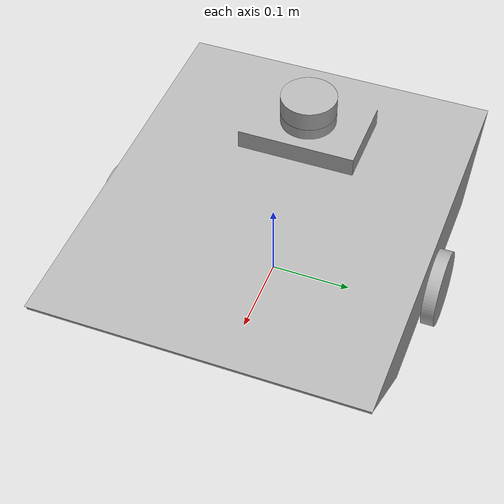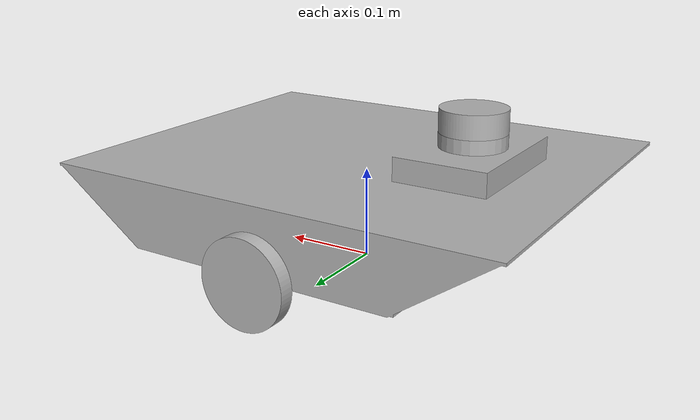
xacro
<?xml version="1.0" ?>
<robot name="urdf-model" xmlns:xacro="http://www.ros.org/wiki/xacro">

<xacro:include filename="$(find urdf-model_description)/urdf/materials.xacro" />
<xacro:include filename="$(find urdf-model_description)/urdf/urdf-model.trans" />
<xacro:include filename="$(find urdf-model_description)/urdf/urdf-model.gazebo" />
<link name="base_link">
  <inertial>
    <origin rpy="0 0 0" xyz="-0.0275061013551108 -0.004341483810504465 0.09680298938914361"/>
    <mass value="2.1080129630892235"/>
    <inertia ixx="0.031032" ixy="-0.000398" ixz="0.002171" iyy="0.040587" iyz="0.000128" izz="0.066435"/>
  </inertial>
  <visual>
    <origin rpy="0 0 0" xyz="0 0 0"/>
    <geometry>
      <mesh filename="package://urdf-model_description/meshes/base_link.stl" scale="0.001 0.001 0.001"/>
    </geometry>
    <material name="silver"/>
  </visual>
  <collision>
    <origin rpy="0 0 0" xyz="0 0 0"/>
    <geometry>
      <mesh filename="package://urdf-model_description/meshes/base_link.stl" scale="0.001 0.001 0.001"/>
    </geometry>
  </collision>
</link>

<link name="left_wheel_1">
  <inertial>
    <origin rpy="0 0 0" xyz="1.004166337169966e-15 -0.007999999999999813 3.2612801348363973e-16"/>
    <mass value="0.10107848168254108"/>
    <inertia ixx="5.7e-05" ixy="0.0" ixz="0.0" iyy="0.000109" iyz="0.0" izz="5.7e-05"/>
  </inertial>
  <visual>
    <origin rpy="0 0 0" xyz="-0.0 0.2115 -0.0465"/>
    <geometry>
      <mesh filename="package://urdf-model_description/meshes/left_wheel_1.stl" scale="0.001 0.001 0.001"/>
    </geometry>
    <material name="silver"/>
  </visual>
  <collision>
    <origin rpy="0 0 0" xyz="-0.0 0.2115 -0.0465"/>
    <geometry>
      <mesh filename="package://urdf-model_description/meshes/left_wheel_1.stl" scale="0.001 0.001 0.001"/>
    </geometry>
  </collision>
</link>

<link name="right_wheel_1">
  <inertial>
    <origin rpy="0 0 0" xyz="-2.1077518583023611e-07 0.00800000000000023 2.983724378680108e-16"/>
    <mass value="0.10107848168254113"/>
    <inertia ixx="5.7e-05" ixy="0.0" ixz="0.0" iyy="0.000109" iyz="0.0" izz="5.7e-05"/>
  </inertial>
  <visual>
    <origin rpy="0 0 0" xyz="3e-05 -0.1925 -0.0465"/>
    <geometry>
      <mesh filename="package://urdf-model_description/meshes/right_wheel_1.stl" scale="0.001 0.001 0.001"/>
    </geometry>
    <material name="silver"/>
  </visual>
  <collision>
    <origin rpy="0 0 0" xyz="3e-05 -0.1925 -0.0465"/>
    <geometry>
      <mesh filename="package://urdf-model_description/meshes/right_wheel_1.stl" scale="0.001 0.001 0.001"/>
    </geometry>
  </collision>
</link>

<link name="lidar_1">
  <inertial>
    <origin rpy="0 0 0" xyz="4.9028732576617e-07 6.591949208711867e-17 0.012500000000000039"/>
    <mass value="0.10406525665016184"/>
    <inertia ixx="3.8e-05" ixy="-0.0" ixz="-0.0" iyy="3.8e-05" iyz="0.0" izz="6.5e-05"/>
  </inertial>
  <visual>
    <origin rpy="0 0 0" xyz="0.125032 0.01 -0.1595"/>
    <geometry>
      <mesh filename="package://urdf-model_description/meshes/lidar_1.stl" scale="0.001 0.001 0.001"/>
    </geometry>
    <material name="silver"/>
  </visual>
  <collision>
    <origin rpy="0 0 0" xyz="0.125032 0.01 -0.1595"/>
    <geometry>
      <mesh filename="package://urdf-model_description/meshes/lidar_1.stl" scale="0.001 0.001 0.001"/>
    </geometry>
  </collision>
</link>

<joint name="Rev7" type="continuous">
  <origin rpy="0 0 0" xyz="0.0 -0.2115 0.0465"/>
  <parent link="base_link"/>
  <child link="left_wheel_1"/>
  <axis xyz="0.0 1.0 0.0"/>
</joint>

<joint name="Rev8" type="continuous">
  <origin rpy="0 0 0" xyz="-3e-05 0.1925 0.0465"/>
  <parent link="base_link"/>
  <child link="right_wheel_1"/>
  <axis xyz="-0.0 1.0 -0.0"/>
</joint>

<joint name="Rigid9" type="fixed">
  <origin rpy="0 0 0" xyz="-0.125032 -0.01 0.1595"/>
  <parent link="base_link"/>
  <child link="lidar_1"/>
</joint>

</robot>

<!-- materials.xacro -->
<robot name="urdf-model" xmlns:xacro="http://www.ros.org/wiki/xacro" >

<material name="silver">
  <color rgba="0.700 0.700 0.700 1.000"/>
</material>

</robot>

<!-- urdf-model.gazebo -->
<robot name="urdf-model" xmlns:xacro="http://www.ros.org/wiki/xacro" >

<xacro:property name="body_color" value="Gazebo/Silver" />

<gazebo>
  <plugin filename="libgazebo_ros_control.so" name="control"/>
</gazebo>
<gazebo reference="base_link">
  <material>${body_color}</material>
  <mu1>0.1</mu1>
  <mu2>0.1</mu2>
  <selfCollide>true</selfCollide>
  <gravity>true</gravity>
</gazebo>

<gazebo reference="left_wheel_1">
  <material>${body_color}</material>
  <mu1>1500</mu1>
  <mu2>1500</mu2>
  <selfCollide>true</selfCollide>
</gazebo>

<gazebo reference="right_wheel_1">
  <material>${body_color}</material>
  <mu1>1500</mu1>
  <mu2>1500</mu2>
  <selfCollide>true</selfCollide>
</gazebo>

<gazebo reference="lidar_1">
  <material>${body_color}</material>
  <mu1>0.2</mu1>
  <mu2>0.2</mu2>
  <selfCollide>true</selfCollide>
</gazebo>

<gazebo>
  <plugin name="differential_drive_controller" filename="libgazebo_ros_diff_drive.so">

    <!-- Plugin update rate in Hz -->
    <updateRate>$100</updateRate>

    <!-- Name of left joint, defaults to `left_joint` -->
    <leftJoint>Rev7</leftJoint>

    <!-- Name of right joint, defaults to `right_joint` -->
    <rightJoint>Rev8</rightJoint>

    <!-- The distance from the center of one wheel to the other, in meters, defaults to 0.34 m -->
    <wheelSeparation>0.404</wheelSeparation>

    <!-- Diameter of the wheels, in meters, defaults to 0.15 m -->
    <wheelDiameter>0.093</wheelDiameter>

    <!-- Wheel acceleration, in rad/s^2, defaults to 0.0 rad/s^2 -->
    <wheelAcceleration>1.0</wheelAcceleration>

    <!-- Maximum torque which the wheels can produce, in Nm, defaults to 5 Nm -->
    <wheelTorque>50</wheelTorque>

    <!-- Topic to receive geometry_msgs/Twist message commands, defaults to `cmd_vel` -->
    <commandTopic>cmd_vel</commandTopic>

    <!-- Topic to publish nav_msgs/Odometry messages, defaults to `odom` -->
    <odometryTopic>odom</odometryTopic>

    <!-- Odometry frame, defaults to `odom` -->
    <odometryFrame>odom</odometryFrame>

    <!-- Robot frame to calculate odometry from, defaults to `base_footprint` -->
    <robotBaseFrame>base_link</robotBaseFrame>

    <!-- Odometry source, 0 for ENCODER, 1 for WORLD, defaults to WORLD -->
    <odometrySource>1</odometrySource>

    <!-- Set to true to publish transforms for the wheel links, defaults to false -->
    <publishWheelTF>true</publishWheelTF>

    <!-- Set to true to publish transforms for the odometry, defaults to true -->
    <publishOdom>true</publishOdom>

    <!-- Set to true to publish sensor_msgs/JointState on /joint_states for the wheel joints, defaults to false -->
    <publishWheelJointState>true</publishWheelJointState>

    <!-- Set to true to swap right and left wheels, defaults to true -->
    <legacyMode>false</legacyMode>
  </plugin>

</gazebo>
 <!-- hokuyo -->
  <gazebo reference="lidar_1">
    <sensor type="ray" name="head_hokuyo_sensor">
      <pose>0 0 0 0 0 0</pose>
      <visualize>true</visualize>
      <update_rate>40</update_rate>
      <ray>
        <scan>
          <horizontal>
            <samples>720</samples>
            <resolution>1</resolution>
            <min_angle>-1.570796</min_angle>
            <max_angle>1.570796</max_angle>
          </horizontal>
        </scan>
        <range>
          <min>0.10</min>
          <max>30.0</max>
          <resolution>0.01</resolution>
        </range>
        <noise>
          <type>gaussian</type>
          <mean>0.0</mean>
          <stddev>0.01</stddev>
        </noise>
      </ray>
      <plugin name="gazebo_ros_head_hokuyo_controller" filename="libgazebo_ros_laser.so">
        <topicName>/scan</topicName>
        <frameName>lidar_1</frameName>
      </plugin>
    </sensor>
  </gazebo>

</robot>
